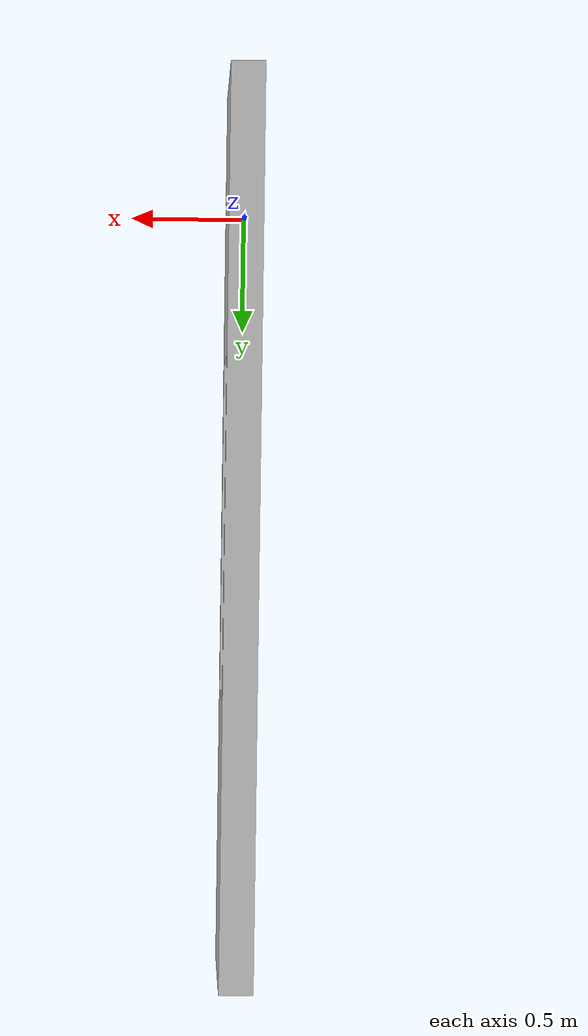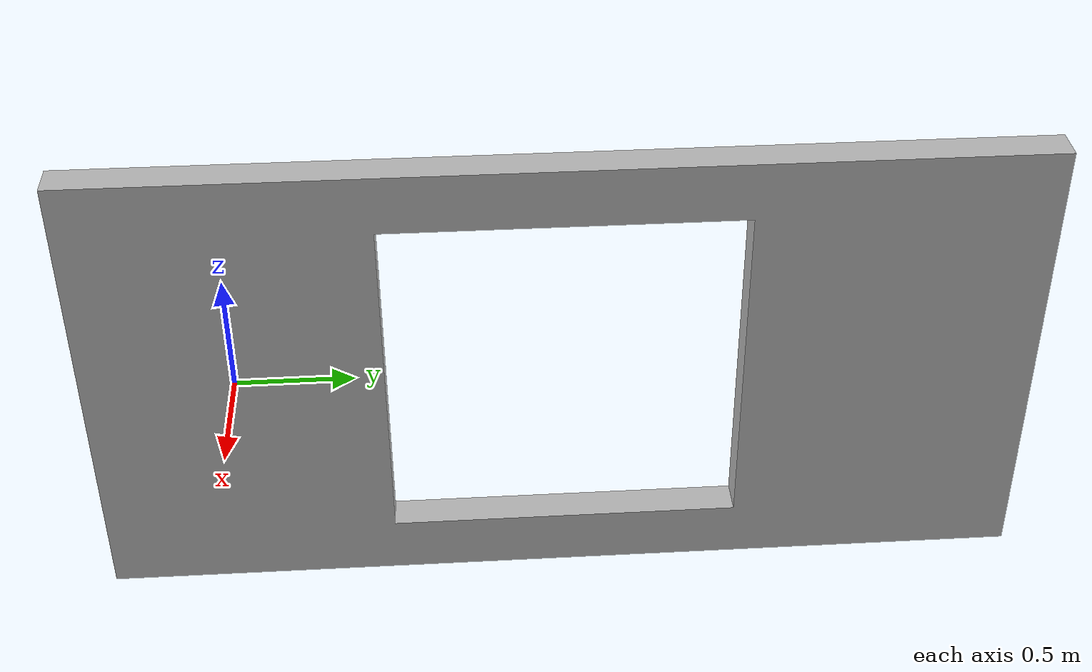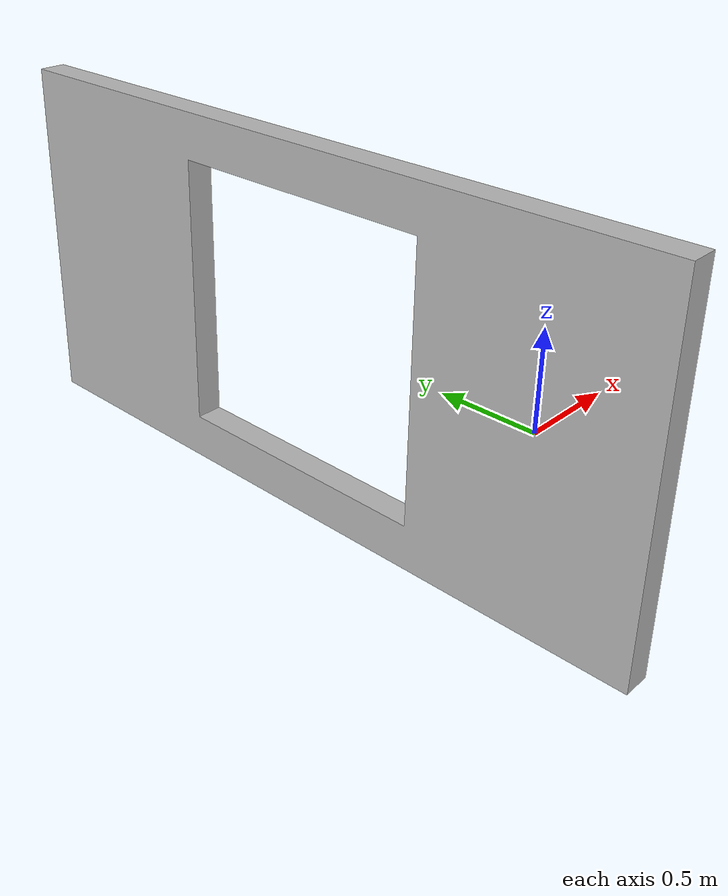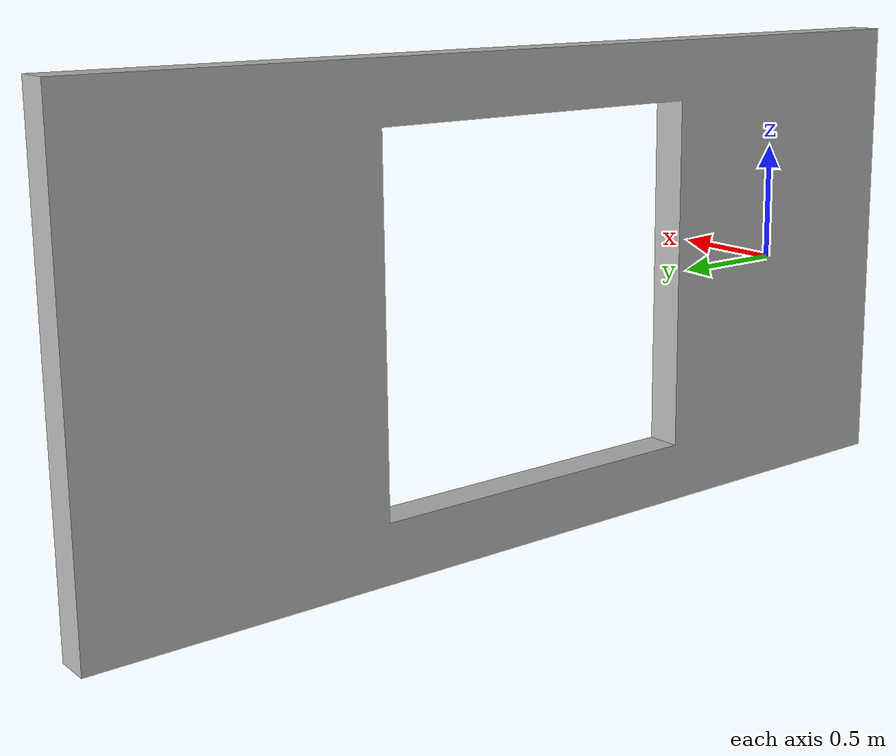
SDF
<?xml version='1.0'?>
<sdf version="1.6">
<model name="behind">
  <static>true</static>
    <link name="link">
      <visual name="visual">
        <geometry>
          <mesh>
            <uri>model://behind/meshes/behind.dae</uri>
          </mesh>
        </geometry>
      </visual>
    </link>
  </model>
</sdf>
